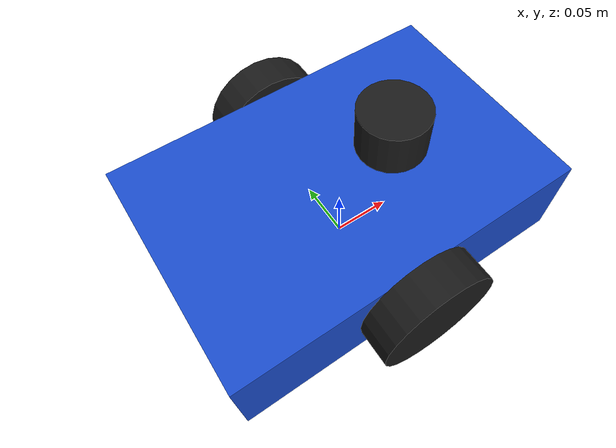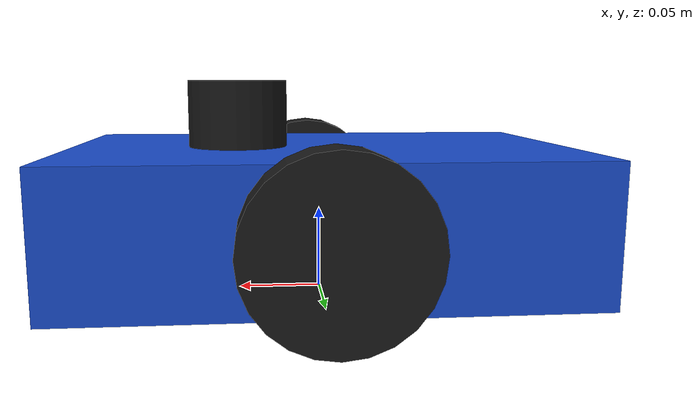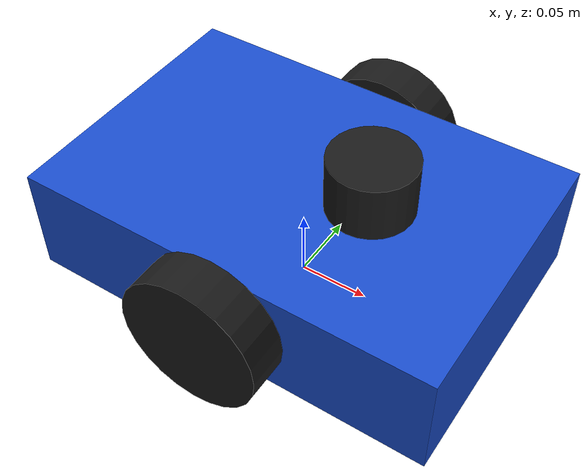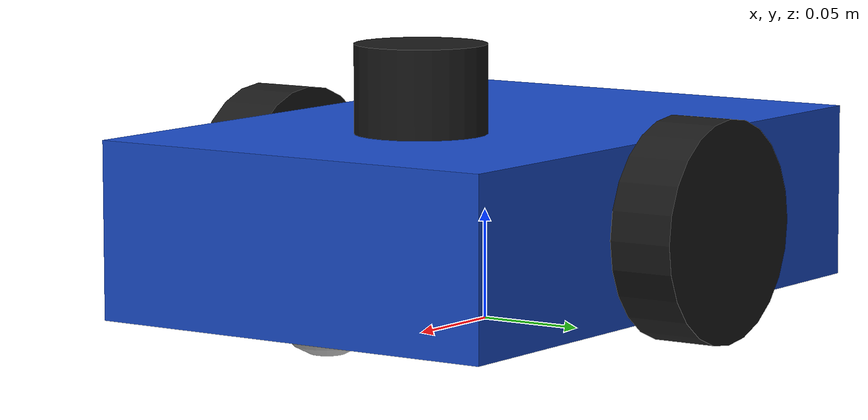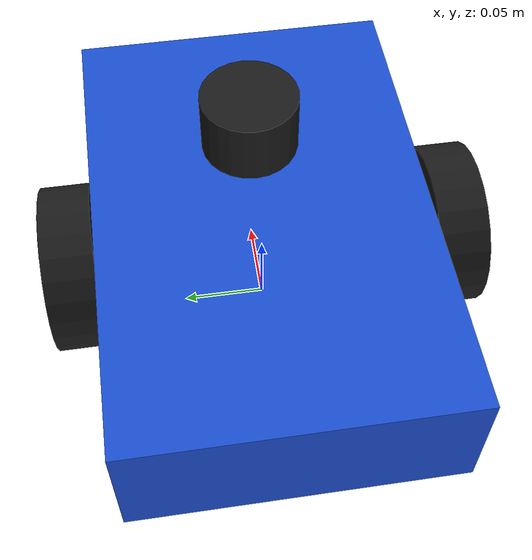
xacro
<?xml version="1.0"?>
<robot xmlns:xacro="http://www.ros.org/wiki/xacro" name="mon_robot">

  <!-- Dimensions en mètres, masses en kg -->
  <xacro:property name="chassis_l" value="0.30"/>
  <xacro:property name="chassis_w" value="0.20"/>
  <xacro:property name="chassis_h" value="0.08"/>
  <xacro:property name="chassis_m" value="2.0"/>
  <xacro:property name="wheel_r" value="0.05"/>
  <xacro:property name="wheel_w" value="0.03"/>
  <xacro:property name="wheel_m" value="0.2"/>
  <xacro:property name="caster_r" value="0.025"/>
  <xacro:property name="caster_m" value="0.1"/>

  <material name="bleu"><color rgba="0.1 0.3 0.8 1"/></material>
  <material name="noir"><color rgba="0.1 0.1 0.1 1"/></material>
  <material name="gris"><color rgba="0.6 0.6 0.6 1"/></material>

  <!-- Macro : une roue motrice -->
  <xacro:macro name="wheel" params="side y_pos">
    <link name="${side}_wheel">
      <visual>
        <geometry><cylinder radius="${wheel_r}" length="${wheel_w}"/></geometry>
        <material name="noir"/>
      </visual>
      <collision>
        <geometry><cylinder radius="${wheel_r}" length="${wheel_w}"/></geometry>
      </collision>
      <inertial>
        <mass value="${wheel_m}"/>
        <inertia ixx="${wheel_m*(3*wheel_r*wheel_r+wheel_w*wheel_w)/12}" ixy="0" ixz="0"
                 iyy="${wheel_m*(3*wheel_r*wheel_r+wheel_w*wheel_w)/12}" iyz="0"
                 izz="${wheel_m*wheel_r*wheel_r/2}"/>
      </inertial>
    </link>
    <joint name="${side}_wheel_joint" type="continuous">
      <parent link="base_link"/>
      <child link="${side}_wheel"/>
      <origin xyz="0 ${y_pos} 0" rpy="${-pi/2} 0 0"/>
      <axis xyz="0 0 1"/>
    </joint>
  </xacro:macro>

  <!-- Macro : une roue folle -->
  <xacro:macro name="caster" params="pos x_pos">
    <link name="${pos}_caster">
      <visual>
        <geometry><sphere radius="${caster_r}"/></geometry>
        <material name="gris"/>
      </visual>
      <collision>
        <geometry><sphere radius="${caster_r}"/></geometry>
      </collision>
      <inertial>
        <mass value="${caster_m}"/>
        <inertia ixx="${2*caster_m*caster_r*caster_r/5}" ixy="0" ixz="0"
                 iyy="${2*caster_m*caster_r*caster_r/5}" iyz="0"
                 izz="${2*caster_m*caster_r*caster_r/5}"/>
      </inertial>
    </link>
    <joint name="${pos}_caster_joint" type="fixed">
      <parent link="base_link"/>
      <child link="${pos}_caster"/>
      <origin xyz="${x_pos} 0 ${caster_r - wheel_r}" rpy="0 0 0"/>
    </joint>
  </xacro:macro>

  <!-- Repère au sol puis châssis -->
  <link name="base_footprint"/>

  <joint name="base_joint" type="fixed">
    <parent link="base_footprint"/>
    <child link="base_link"/>
    <origin xyz="0 0 ${wheel_r}" rpy="0 0 0"/>
  </joint>

  <link name="base_link">
    <visual>
      <geometry><box size="${chassis_l} ${chassis_w} ${chassis_h}"/></geometry>
      <material name="bleu"/>
    </visual>
    <collision>
      <geometry><box size="${chassis_l} ${chassis_w} ${chassis_h}"/></geometry>
    </collision>
    <inertial>
      <mass value="${chassis_m}"/>
      <inertia ixx="${chassis_m*(chassis_w*chassis_w+chassis_h*chassis_h)/12}" ixy="0" ixz="0"
               iyy="${chassis_m*(chassis_l*chassis_l+chassis_h*chassis_h)/12}" iyz="0"
               izz="${chassis_m*(chassis_l*chassis_l+chassis_w*chassis_w)/12}"/>
    </inertial>
  </link>

  <!-- Assemblage -->
  <xacro:wheel side="left" y_pos="${chassis_w/2 + wheel_w/2}"/>
  <xacro:wheel side="right" y_pos="${-(chassis_w/2 + wheel_w/2)}"/>
  <xacro:caster pos="front" x_pos="${chassis_l/2 - 0.03}"/>
  <xacro:caster pos="back" x_pos="${-(chassis_l/2 - 0.03)}"/>
  <!-- Gazebo : roues folles sans frottement -->
  <gazebo reference="front_caster">
    <mu1>0.0</mu1>
    <mu2>0.0</mu2>
  </gazebo>
  <gazebo reference="back_caster">
    <mu1>0.0</mu1>
    <mu2>0.0</mu2>
  </gazebo>

  <!-- Gazebo : moteurs et odométrie -->
  <gazebo>
    <plugin filename="gz-sim-diff-drive-system" name="gz::sim::systems::DiffDrive">
      <left_joint>left_wheel_joint</left_joint>
      <right_joint>right_wheel_joint</right_joint>
      <wheel_separation>0.23</wheel_separation>
      <wheel_radius>0.05</wheel_radius>
      <topic>cmd_vel</topic>
      <odom_topic>odom</odom_topic>
      <tf_topic>/tf</tf_topic>
      <frame_id>odom</frame_id>
      <child_frame_id>base_footprint</child_frame_id>
      <odom_publish_frequency>20</odom_publish_frequency>
      <max_linear_velocity>0.5</max_linear_velocity>
      <min_linear_velocity>-0.5</min_linear_velocity>
      <max_angular_velocity>1.5</max_angular_velocity>
      <min_angular_velocity>-1.5</min_angular_velocity>
    </plugin>
    <plugin filename="gz-sim-joint-state-publisher-system" name="gz::sim::systems::JointStatePublisher">
      <topic>joint_states</topic>
      <joint_name>left_wheel_joint</joint_name>
      <joint_name>right_wheel_joint</joint_name>
    </plugin>
  </gazebo>
    <!-- Lidar 2D posé sur le châssis -->
  <link name="lidar_link">
    <visual>
      <geometry><cylinder radius="0.03" length="0.04"/></geometry>
      <material name="noir"/>
    </visual>
    <collision>
      <geometry><cylinder radius="0.03" length="0.04"/></geometry>
    </collision>
    <inertial>
      <mass value="0.1"/>
      <inertia ixx="0.0000358" ixy="0" ixz="0" iyy="0.0000358" iyz="0" izz="0.000045"/>
    </inertial>
  </link>

  <joint name="lidar_joint" type="fixed">
    <parent link="base_link"/>
    <child link="lidar_link"/>
    <origin xyz="0.05 0 0.06" rpy="0 0 0"/>
  </joint>

  <gazebo reference="lidar_link">
    <sensor name="lidar" type="gpu_lidar">
      <always_on>true</always_on>
      <visualize>false</visualize>
      <update_rate>10</update_rate>
      <topic>scan</topic>
      <gz_frame_id>lidar_link</gz_frame_id>
      <lidar>
        <scan>
          <horizontal>
            <samples>360</samples>
            <resolution>1</resolution>
            <min_angle>-3.14159</min_angle>
            <max_angle>3.14159</max_angle>
          </horizontal>
        </scan>
        <range>
          <min>0.12</min>
          <max>6.0</max>
          <resolution>0.01</resolution>
        </range>
      <noise><type>gaussian</type><mean>0.0</mean><stddev>0.01</stddev></noise></lidar>
    </sensor>
  </gazebo>

  <!-- IMU au centre du châssis -->
  <link name="imu_link">
    <inertial>
      <mass value="0.01"/>
      <inertia ixx="0.000001" ixy="0" ixz="0" iyy="0.000001" iyz="0" izz="0.000001"/>
    </inertial>
  </link>

  <joint name="imu_joint" type="fixed">
    <parent link="base_link"/>
    <child link="imu_link"/>
    <origin xyz="0 0 0.02" rpy="0 0 0"/>
  </joint>

  <gazebo reference="imu_link">
    <sensor name="imu" type="imu">
      <always_on>true</always_on>
      <update_rate>50</update_rate>
      <visualize>false</visualize>
      <topic>imu</topic>
      <gz_frame_id>imu_link</gz_frame_id>
      <imu>
        <angular_velocity>
          <x><noise type="gaussian"><mean>0.0</mean><stddev>0.0002</stddev></noise></x>
          <y><noise type="gaussian"><mean>0.0</mean><stddev>0.0002</stddev></noise></y>
          <z><noise type="gaussian"><mean>0.0</mean><stddev>0.0002</stddev></noise></z>
        </angular_velocity>
        <linear_acceleration>
          <x><noise type="gaussian"><mean>0.0</mean><stddev>0.017</stddev></noise></x>
          <y><noise type="gaussian"><mean>0.0</mean><stddev>0.017</stddev></noise></y>
          <z><noise type="gaussian"><mean>0.0</mean><stddev>0.017</stddev></noise></z>
        </linear_acceleration>
      </imu>
    </sensor>
  </gazebo>

</robot>
